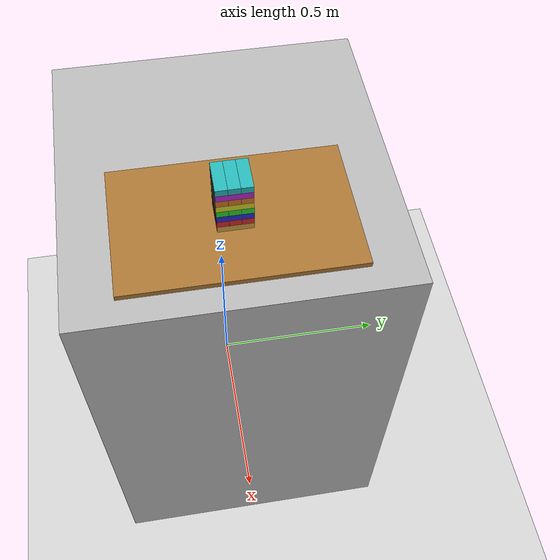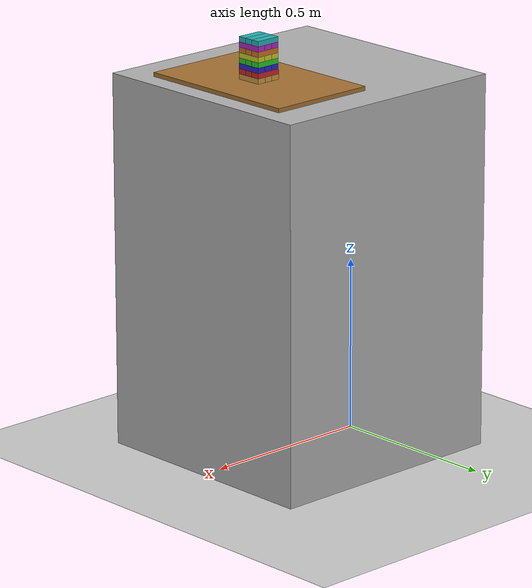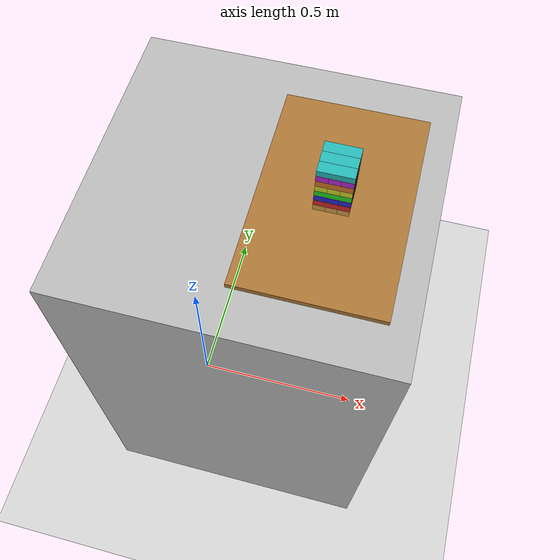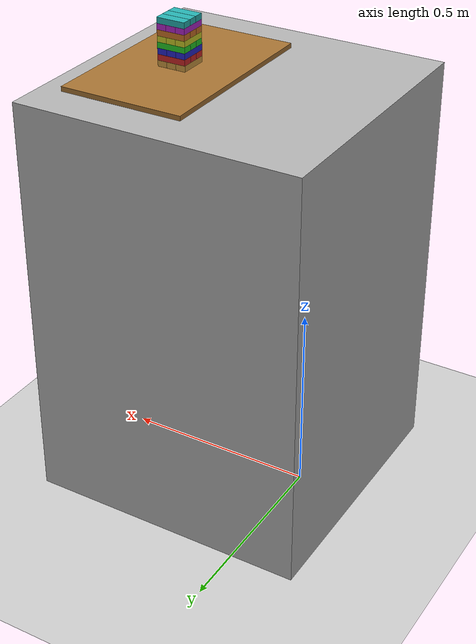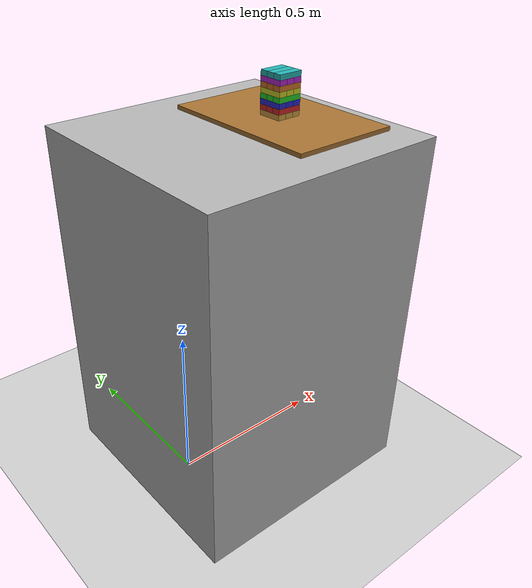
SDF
<?xml version="1.0" ?>
<sdf version="1.6">
  <world name="ur3e_sim_world">

    <include>
      <uri>model://sun</uri>
    </include>

    <include>
      <uri>model://ground_plane</uri>
    </include>

    <!-- Physics tuning for stable stacked small objects (prevents jitter/collapse) -->
    <physics type="ode">
      <max_step_size>0.001</max_step_size>
      <real_time_update_rate>1000</real_time_update_rate>
      <ode>
        <solver>
          <type>world</type>
        </solver>
        <constraints>
          <erp>0.2</erp>
          <cfm>1e-10</cfm>
          <contact_max_correcting_vel>0.01</contact_max_correcting_vel>
          <contact_surface_layer>0.0005</contact_surface_layer>
        </constraints>
      </ode>
    </physics>

    <model name="wheeled_cabinet">
      <static>true</static>
      <pose>0.20 0 0 0 0 0</pose>
      <link name="link">
        <pose>0 0 0.54 0 0 0</pose>
        <collision name="collision">
          <geometry>
            <box><size>0.735 0.71 1.08</size></box>
          </geometry>
        </collision>
        <visual name="visual">
          <geometry>
            <box><size>0.735 0.71 1.08</size></box>
          </geometry>
          <material>
            <ambient>0.30 0.30 0.30 1</ambient>
            <diffuse>0.70 0.70 0.70 1</diffuse>
          </material>
        </visual>
      </link>
    </model>

    <model name="platform">
      <static>true</static>
      <pose>0.35 0.0 1.086 0 0 0</pose>
      <link name="link">
        <collision name="collision">
          <geometry>
            <box><size>0.320 0.450 0.0125</size></box>
          </geometry>
          <surface>
            <contact><ode><min_depth>0.001</min_depth><max_vel>0.1</max_vel></ode></contact>
          </surface>
        </collision>
        <visual name="visual">
          <geometry>
            <box><size>0.320 0.500 0.012</size></box>
          </geometry>
          <material>
            <ambient>0.40 0.25 0.10 1</ambient>
            <diffuse>0.65 0.45 0.20 1</diffuse>
          </material>
        </visual>
      </link>
    </model>

    <!--
      Jenga tower (8 layers × 3 blocks) — STATIC blocks (no physics). Use for stable simulation.
      For dynamic blocks (playable Jenga), set jenga_static:=false and use spawn_jenga_tower.
    -->
    <model name="jenga_L1_B1"><static>true</static><pose>0.325 0.0 1.0995 0 0 0</pose><link name="link"><collision name="c"><geometry><box><size>0.025 0.075 0.015</size></box></geometry></collision><visual name="v"><geometry><box><size>0.025 0.075 0.015</size></box></geometry><material><ambient>0.45 0.30 0.10 1</ambient><diffuse>0.80 0.60 0.25 1</diffuse></material></visual></link></model>
    <model name="jenga_L1_B2"><static>true</static><pose>0.350 0.0 1.0995 0 0 0</pose><link name="link"><collision name="c"><geometry><box><size>0.025 0.075 0.015</size></box></geometry></collision><visual name="v"><geometry><box><size>0.025 0.075 0.015</size></box></geometry><material><ambient>0.45 0.30 0.10 1</ambient><diffuse>0.80 0.60 0.25 1</diffuse></material></visual></link></model>
    <model name="jenga_L1_B3"><static>true</static><pose>0.375 0.0 1.0995 0 0 0</pose><link name="link"><collision name="c"><geometry><box><size>0.025 0.075 0.015</size></box></geometry></collision><visual name="v"><geometry><box><size>0.025 0.075 0.015</size></box></geometry><material><ambient>0.45 0.30 0.10 1</ambient><diffuse>0.80 0.60 0.25 1</diffuse></material></visual></link></model>
    <model name="jenga_L2_B1"><static>true</static><pose>0.35 -0.025 1.1145 0 0 0</pose><link name="link"><collision name="c"><geometry><box><size>0.075 0.025 0.015</size></box></geometry></collision><visual name="v"><geometry><box><size>0.075 0.025 0.015</size></box></geometry><material><ambient>0.45 0.08 0.08 1</ambient><diffuse>0.80 0.15 0.15 1</diffuse></material></visual></link></model>
    <model name="jenga_L2_B2"><static>true</static><pose>0.35 0.0 1.1145 0 0 0</pose><link name="link"><collision name="c"><geometry><box><size>0.075 0.025 0.015</size></box></geometry></collision><visual name="v"><geometry><box><size>0.075 0.025 0.015</size></box></geometry><material><ambient>0.45 0.08 0.08 1</ambient><diffuse>0.80 0.15 0.15 1</diffuse></material></visual></link></model>
    <model name="jenga_L2_B3"><static>true</static><pose>0.35 0.025 1.1145 0 0 0</pose><link name="link"><collision name="c"><geometry><box><size>0.075 0.025 0.015</size></box></geometry></collision><visual name="v"><geometry><box><size>0.075 0.025 0.015</size></box></geometry><material><ambient>0.45 0.08 0.08 1</ambient><diffuse>0.80 0.15 0.15 1</diffuse></material></visual></link></model>
    <model name="jenga_L3_B1"><static>true</static><pose>0.325 0.0 1.1295 0 0 0</pose><link name="link"><collision name="c"><geometry><box><size>0.025 0.075 0.015</size></box></geometry></collision><visual name="v"><geometry><box><size>0.025 0.075 0.015</size></box></geometry><material><ambient>0.08 0.08 0.45 1</ambient><diffuse>0.15 0.15 0.80 1</diffuse></material></visual></link></model>
    <model name="jenga_L3_B2"><static>true</static><pose>0.350 0.0 1.1295 0 0 0</pose><link name="link"><collision name="c"><geometry><box><size>0.025 0.075 0.015</size></box></geometry></collision><visual name="v"><geometry><box><size>0.025 0.075 0.015</size></box></geometry><material><ambient>0.08 0.08 0.45 1</ambient><diffuse>0.15 0.15 0.80 1</diffuse></material></visual></link></model>
    <model name="jenga_L3_B3"><static>true</static><pose>0.375 0.0 1.1295 0 0 0</pose><link name="link"><collision name="c"><geometry><box><size>0.025 0.075 0.015</size></box></geometry></collision><visual name="v"><geometry><box><size>0.025 0.075 0.015</size></box></geometry><material><ambient>0.08 0.08 0.45 1</ambient><diffuse>0.15 0.15 0.80 1</diffuse></material></visual></link></model>
    <model name="jenga_L4_B1"><static>true</static><pose>0.35 -0.025 1.1445 0 0 0</pose><link name="link"><collision name="c"><geometry><box><size>0.075 0.025 0.015</size></box></geometry></collision><visual name="v"><geometry><box><size>0.075 0.025 0.015</size></box></geometry><material><ambient>0.08 0.45 0.08 1</ambient><diffuse>0.15 0.80 0.15 1</diffuse></material></visual></link></model>
    <model name="jenga_L4_B2"><static>true</static><pose>0.35 0.0 1.1445 0 0 0</pose><link name="link"><collision name="c"><geometry><box><size>0.075 0.025 0.015</size></box></geometry></collision><visual name="v"><geometry><box><size>0.075 0.025 0.015</size></box></geometry><material><ambient>0.08 0.45 0.08 1</ambient><diffuse>0.15 0.80 0.15 1</diffuse></material></visual></link></model>
    <model name="jenga_L4_B3"><static>true</static><pose>0.35 0.025 1.1445 0 0 0</pose><link name="link"><collision name="c"><geometry><box><size>0.075 0.025 0.015</size></box></geometry></collision><visual name="v"><geometry><box><size>0.075 0.025 0.015</size></box></geometry><material><ambient>0.08 0.45 0.08 1</ambient><diffuse>0.15 0.80 0.15 1</diffuse></material></visual></link></model>
    <model name="jenga_L5_B1"><static>true</static><pose>0.325 0.0 1.1595 0 0 0</pose><link name="link"><collision name="c"><geometry><box><size>0.025 0.075 0.015</size></box></geometry></collision><visual name="v"><geometry><box><size>0.025 0.075 0.015</size></box></geometry><material><ambient>0.45 0.45 0.08 1</ambient><diffuse>0.80 0.80 0.15 1</diffuse></material></visual></link></model>
    <model name="jenga_L5_B2"><static>true</static><pose>0.350 0.0 1.1595 0 0 0</pose><link name="link"><collision name="c"><geometry><box><size>0.025 0.075 0.015</size></box></geometry></collision><visual name="v"><geometry><box><size>0.025 0.075 0.015</size></box></geometry><material><ambient>0.45 0.45 0.08 1</ambient><diffuse>0.80 0.80 0.15 1</diffuse></material></visual></link></model>
    <model name="jenga_L5_B3"><static>true</static><pose>0.375 0.0 1.1595 0 0 0</pose><link name="link"><collision name="c"><geometry><box><size>0.025 0.075 0.015</size></box></geometry></collision><visual name="v"><geometry><box><size>0.025 0.075 0.015</size></box></geometry><material><ambient>0.45 0.45 0.08 1</ambient><diffuse>0.80 0.80 0.15 1</diffuse></material></visual></link></model>
    <model name="jenga_L6_B1"><static>true</static><pose>0.35 -0.025 1.1745 0 0 0</pose><link name="link"><collision name="c"><geometry><box><size>0.075 0.025 0.015</size></box></geometry></collision><visual name="v"><geometry><box><size>0.075 0.025 0.015</size></box></geometry><material><ambient>0.45 0.25 0.08 1</ambient><diffuse>0.80 0.45 0.15 1</diffuse></material></visual></link></model>
    <model name="jenga_L6_B2"><static>true</static><pose>0.35 0.0 1.1745 0 0 0</pose><link name="link"><collision name="c"><geometry><box><size>0.075 0.025 0.015</size></box></geometry></collision><visual name="v"><geometry><box><size>0.075 0.025 0.015</size></box></geometry><material><ambient>0.45 0.25 0.08 1</ambient><diffuse>0.80 0.45 0.15 1</diffuse></material></visual></link></model>
    <model name="jenga_L6_B3"><static>true</static><pose>0.35 0.025 1.1745 0 0 0</pose><link name="link"><collision name="c"><geometry><box><size>0.075 0.025 0.015</size></box></geometry></collision><visual name="v"><geometry><box><size>0.075 0.025 0.015</size></box></geometry><material><ambient>0.45 0.25 0.08 1</ambient><diffuse>0.80 0.45 0.15 1</diffuse></material></visual></link></model>
    <model name="jenga_L7_B1"><static>true</static><pose>0.325 0.0 1.1895 0 0 0</pose><link name="link"><collision name="c"><geometry><box><size>0.025 0.075 0.015</size></box></geometry></collision><visual name="v"><geometry><box><size>0.025 0.075 0.015</size></box></geometry><material><ambient>0.38 0.08 0.45 1</ambient><diffuse>0.70 0.15 0.80 1</diffuse></material></visual></link></model>
    <model name="jenga_L7_B2"><static>true</static><pose>0.350 0.0 1.1895 0 0 0</pose><link name="link"><collision name="c"><geometry><box><size>0.025 0.075 0.015</size></box></geometry></collision><visual name="v"><geometry><box><size>0.025 0.075 0.015</size></box></geometry><material><ambient>0.38 0.08 0.45 1</ambient><diffuse>0.70 0.15 0.80 1</diffuse></material></visual></link></model>
    <model name="jenga_L7_B3"><static>true</static><pose>0.375 0.0 1.1895 0 0 0</pose><link name="link"><collision name="c"><geometry><box><size>0.025 0.075 0.015</size></box></geometry></collision><visual name="v"><geometry><box><size>0.025 0.075 0.015</size></box></geometry><material><ambient>0.38 0.08 0.45 1</ambient><diffuse>0.70 0.15 0.80 1</diffuse></material></visual></link></model>
    <model name="jenga_L8_B1"><static>true</static><pose>0.35 -0.025 1.2045 0 0 0</pose><link name="link"><collision name="c"><geometry><box><size>0.075 0.025 0.015</size></box></geometry></collision><visual name="v"><geometry><box><size>0.075 0.025 0.015</size></box></geometry><material><ambient>0.08 0.38 0.38 1</ambient><diffuse>0.15 0.70 0.70 1</diffuse></material></visual></link></model>
    <model name="jenga_L8_B2"><static>true</static><pose>0.35 0.0 1.2045 0 0 0</pose><link name="link"><collision name="c"><geometry><box><size>0.075 0.025 0.015</size></box></geometry></collision><visual name="v"><geometry><box><size>0.075 0.025 0.015</size></box></geometry><material><ambient>0.08 0.38 0.38 1</ambient><diffuse>0.15 0.70 0.70 1</diffuse></material></visual></link></model>
    <model name="jenga_L8_B3"><static>true</static><pose>0.35 0.025 1.2045 0 0 0</pose><link name="link"><collision name="c"><geometry><box><size>0.075 0.025 0.015</size></box></geometry></collision><visual name="v"><geometry><box><size>0.075 0.025 0.015</size></box></geometry><material><ambient>0.08 0.38 0.38 1</ambient><diffuse>0.15 0.70 0.70 1</diffuse></material></visual></link></model>

  </world>
</sdf>
